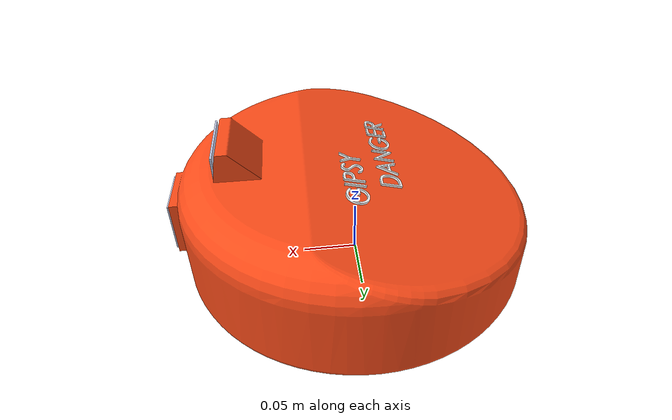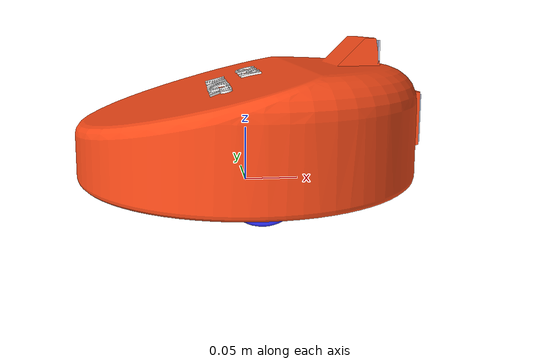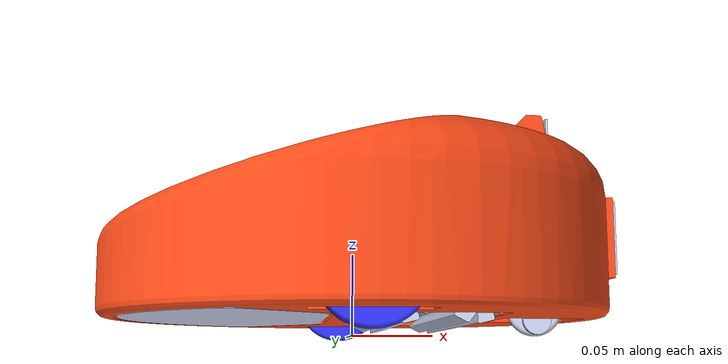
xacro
<?xml version='1.0'?>

<robot name="vaccumbot" xmlns:xacro="http://www.ros.org/wiki/xacro">

  <xacro:include filename="$(find vaccumbot)/urdf/vaccumbot_core.xacro" />
  <xacro:include filename="$(find vaccumbot)/urdf/vaccumbot_gazebo_control.xacro" />
  <xacro:include filename="$(find vaccumbot)/urdf/vaccumbot_camera.xacro" />
  <xacro:include filename="$(find vaccumbot)/urdf/vaccumbot_depth_camera.xacro" />

</robot>

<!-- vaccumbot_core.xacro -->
<robot name="vaccumbot" xmlns:xacro="http://www.ros.org/wiki/xacro" >

  <!-- BASE LINK -->

  <link name="base_link"/>
  <joint name="chassis_joint" type="fixed">
    <parent link="base_link"/>
    <child link="chassis_link"/>
    <origin rpy="0 0 0" xyz="0.0 0.0 0.0"/>
  </joint>

  <!-- CHASSIS LINK -->

  <link
    name="chassis_link">
    <inertial>
      <origin
        xyz="0.0126802640837411 6.40949875362062E-08 0.058194051584857"
        rpy="0 0 0" />
      <mass
        value="5.4959" />
      <inertia
        ixx="0.0371356810930404"
        ixy="9.9949761040764E-08"
        ixz="-0.00286739459112981"
        iyy="0.0355593300545489"
        iyz="-5.03783025884039E-09"
        izz="0.065646705814224" />
    </inertial>
    <visual>
      <origin
        xyz="0 0 0"
        rpy="0 0 0" />
      <geometry>
        <mesh
          filename="package://vaccumbot/meshes/base_link.STL" />
      </geometry>
      <material
        name="orange">
        <color
          rgba="1 0.3 0.1 1" />
      </material>
    </visual>
    <collision>
      <origin
        xyz="0 0 0"
        rpy="0 0 0" />
      <geometry>
        <mesh
          filename="package://vaccumbot/meshes/base_link.STL" />
      </geometry>
    </collision>
  </link>

  <!-- RIGHT WHEEL LINK -->

  <link
    name="rw_link">
    <inertial>
      <origin
        xyz="3.46944695195361E-18 3.46944695195361E-18 -2.77555756156289E-17"
        rpy="0 0 0" />
      <mass
        value="0.0491025370241815" />
      <inertia
        ixx="1.26103906089121E-05"
        ixy="1.04983184786151E-40"
        ixz="2.38228016415271E-22"
        iyy="1.26103906089121E-05"
        iyz="-2.29393049350819E-38"
        izz="2.2604204311792E-05" />
    </inertial>
    <visual>
      <origin
        xyz="0 0 0"
        rpy="0 0 0" />
      <geometry>
        <mesh
          filename="package://vaccumbot/meshes/rw_link.STL" />
      </geometry>
      <material
        name="blue">
        <color
          rgba="0.2 0.2 1 1" />
      </material>
    </visual>
    <collision>
      <origin
        xyz="0 0 0"
        rpy="0 0 0" />
      <geometry>
        <mesh
          filename="package://vaccumbot/meshes/rw_link.STL" />
      </geometry>
    </collision>
  </link>
  <joint
    name="rw"
    type="continuous">
    <origin
      xyz="0 -0.125 0.03"
      rpy="-1.5708 0 0" />
    <parent
      link="base_link" />
    <child
      link="rw_link" />
    <axis
      xyz="0 0 1" />
  </joint>

  <!-- LEFT WHEEL LINK -->

  <link
    name="lw_link">
    <inertial>
      <origin
        xyz="-3.46944695195361E-18 0 0"
        rpy="0 0 0" />
      <mass
        value="0.0491025370241815" />
      <inertia
        ixx="1.26103906089121E-05"
        ixy="-6.69042449460786E-38"
        ixz="-1.19114008207636E-22"
        iyy="1.26103906089121E-05"
        iyz="-4.01780295691213E-38"
        izz="2.26042043117919E-05" />
    </inertial>
    <visual>
      <origin
        xyz="0 0 0"
        rpy="0 0 0" />
      <geometry>
        <mesh
          filename="package://vaccumbot/meshes/lw_link.STL" />
      </geometry>
      <material
        name="blue">
        <color
          rgba="0.2 0.2 1 1" />
      </material>
    </visual>
    <collision>
      <origin
        xyz="0 0 0"
        rpy="0 0 0" />
      <geometry>
        <mesh
          filename="package://vaccumbot/meshes/lw_link.STL" />
      </geometry>
    </collision>
  </link>
  <joint
    name="lw"
    type="continuous">
    <origin
      xyz="0 0.125 0.03"
      rpy="1.5708 0 3.1416" />
    <parent
      link="base_link" />
    <child
      link="lw_link" />
    <axis
      xyz="0 0 1" />
  </joint>

  <!-- CASTOR WHEEL ASSEMBLY LINK -->

  <link
    name="strasm_link">
    <inertial>
      <origin
        xyz="0 -6.0629E-06 -0.019457"
        rpy="0 0 0" />
      <mass
        value="0.0046361" />
      <inertia
        ixx="7.54894203218429E-07"
        ixy="-2.44258930305482E-23"
        ixz="-2.20603142303679E-23"
        iyy="7.18558824886549E-07"
        iyz="4.14054745693393E-10"
        izz="2.51203869548262E-07" />
    </inertial>
    <visual>
      <origin
        xyz="0 0 0"
        rpy="0 0 0" />
      <geometry>
        <mesh
          filename="package://vaccumbot/meshes/strasm_link.STL" />
      </geometry>
      <material
        name="">
        <color
          rgba="0.79216 0.81961 0.93333 1" />
      </material>
    </visual>
    <collision>
      <origin
        xyz="0 0 0"
        rpy="0 0 0" />
      <geometry>
        <mesh
          filename="package://vaccumbot/meshes/strasm_link.STL" />
      </geometry>
    </collision>
  </link>
  <joint
    name="strasm"
    type="fixed">
    <origin
      xyz="0.115 0 0.0425"
      rpy="0 0 0" />
    <parent
      link="base_link" />
    <child
      link="strasm_link" />
    <axis
      xyz="0 0 -1" />
  </joint>

  <!-- CASTOR WHEEL LINK -->

  <link
    name="sw_link">
    <inertial>
      <origin
        xyz="2.7756E-17 -1.7347E-18 0.00048162"
        rpy="0 0 0" />
      <mass
        value="0.0070929" />
      <inertia
        ixx="5.65921693036348E-07"
        ixy="1.69347815846754E-39"
        ixz="2.05269774647707E-25"
        iyy="5.65921693036347E-07"
        iyz="1.79366203433577E-39"
        izz="1.06158941239449E-06" />
    </inertial>
    <visual>
      <origin
        xyz="0 0 0"
        rpy="0 0 0" />
      <geometry>
        <mesh
          filename="package://vaccumbot/meshes/sw_link.STL" />
      </geometry>
      <material
        name="">
        <color
          rgba="0.79216 0.81961 0.93333 1" />
      </material>
    </visual>
    <collision>
      <origin
        xyz="0 0 0"
        rpy="0 0 0" />
      <geometry>
        <mesh
          filename="package://vaccumbot/meshes/sw_link.STL" />
      </geometry>
      <surface>
        <friction>
            <ode>
                <mu>0.0001</mu>
                <mu2>0.0001</mu2>
            </ode>
        </friction>
      </surface>
    </collision>
  </link>
  <joint
    name="sw"
    type="continuous">
    <origin
      xyz="0 0 -0.025"
      rpy="-1.5708 0 0" />
    <parent
      link="strasm_link" />
    <child
      link="sw_link" />
    <axis
      xyz="0 0 -1" />
  </joint>

  <!-- FRONT VACCUM WHEEL LINK -->

  <link
    name="fvc_link">
    <inertial>
      <origin
        xyz="-5.3363E-09 1.3197E-09 3.4207E-09"
        rpy="0 0 0" />
      <mass
        value="0.13746" />
      <inertia
        ixx="0.00035908"
        ixy="6.9136E-12"
        ixz="-8.7755E-12"
        iyy="0.00036184"
        iyz="1.1468E-12"
        izz="1.9297E-05" />
    </inertial>
    <visual>
      <origin
        xyz="0 0 0"
        rpy="0 0 0" />
      <geometry>
        <mesh
          filename="package://vaccumbot/meshes/fvc_link.STL" />
      </geometry>
      <material
        name="">
        <color
          rgba="0.79216 0.81961 0.93333 1" />
      </material>
    </visual>
    <collision>
      <origin
        xyz="0 0 0"
        rpy="0 0 0" />
      <geometry>
        <mesh
          filename="package://vaccumbot/meshes/fvc_link.STL" />
      </geometry>
    </collision>
  </link>
  <joint
    name="fvc"
    type="continuous">
    <origin
      xyz="0.0195 0 0.0205"
      rpy="1.5708 0 3.1416" />
    <parent
      link="base_link" />
    <child
      link="fvc_link" />
    <axis
      xyz="0 0 -1" />
  </joint>

  <!-- REAR VACCUM WHEEL LINK -->

  <link
    name="rvc_link">
    <inertial>
      <origin
        xyz="-5.3363E-09 1.3197E-09 3.4207E-09"
        rpy="0 0 0" />
      <mass
        value="0.13746" />
      <inertia
        ixx="0.00035908"
        ixy="6.9136E-12"
        ixz="-8.7755E-12"
        iyy="0.00036184"
        iyz="1.1468E-12"
        izz="1.9297E-05" />
    </inertial>
    <visual>
      <origin
        xyz="0 0 0"
        rpy="0 0 0" />
      <geometry>
        <mesh
          filename="package://vaccumbot/meshes/rvc_link.STL" />
      </geometry>
      <material
        name="">
        <color
          rgba="0.79216 0.81961 0.93333 1" />
      </material>
    </visual>
    <collision>
      <origin
        xyz="0 0 0"
        rpy="0 0 0" />
      <geometry>
        <mesh
          filename="package://vaccumbot/meshes/rvc_link.STL" />
      </geometry>
    </collision>
  </link>
  <joint
    name="rvc"
    type="continuous">
    <origin
      xyz="0.0605 0 0.0205"
      rpy="1.5708 0 3.1416" />
    <parent
      link="base_link" />
    <child
      link="rvc_link" />
    <axis
      xyz="0 0 -1" />
  </joint>

  <!-- FLOOR MOPPING LINK -->

  <link
    name="flwp_link">
    <inertial>
      <origin
        xyz="0.0011186 1.8041E-16 0.016349"
        rpy="0 0 0" />
      <mass
        value="0.070162" />
      <inertia
        ixx="0.000229902876916624"
        ixy="2.06001046897999E-19"
        ixz="-1.18603162435497E-08"
        iyy="7.04015716052353E-05"
        iyz="-2.79956816464161E-21"
        izz="0.000299969147301236" />
    </inertial>
    <visual>
      <origin
        xyz="0 0 0"
        rpy="0 0 0" />
      <geometry>
        <mesh
          filename="package://vaccumbot/meshes/flwp_link.STL" />
      </geometry>
      <material
        name="">
        <color
          rgba="0.79216 0.81961 0.93333 1" />
      </material>
    </visual>
    <collision>
      <origin
        xyz="0 0 0"
        rpy="0 0 0" />
      <geometry>
        <mesh
          filename="package://vaccumbot/meshes/flwp_link.STL" />
      </geometry>
    </collision>
  </link>
  <joint
    name="flwp"
    type="prismatic">
    <origin
      xyz="-0.075 0 0.028"
      rpy="3.1416 0 3.1416" />
    <parent
      link="base_link" />
    <child
      link="flwp_link" />
    <axis
      xyz="0 0 -1" />
    <limit
      lower="0"
      upper="0.009"
      effort="0"
      velocity="0" />
  </joint>

  <!-- TOP CAMERA LINK -->

  <link
    name="tcam_link">
    <inertial>
      <origin
        xyz="-0.000749999999999973 -5.89805981832114E-17 0"
        rpy="0 0 0" />
      <mass
        value="0.00198" />
      <inertia
        ixx="6.7386E-07"
        ixy="-5.77301437445242E-23"
        ixz="-1.98523347012727E-23"
        iyy="8.023125E-08"
        iyz="-4.40511694302034E-22"
        izz="5.9437125E-07" />
    </inertial>
    <visual>
      <origin
        xyz="0 0 0"
        rpy="0 0 0" />
      <geometry>
        <mesh
          filename="package://vaccumbot/meshes/tcam_link.STL" />
      </geometry>
      <material
        name="">
        <color
          rgba="0.792156862745098 0.819607843137255 0.933333333333333 1" />
      </material>
    </visual>
    <collision>
      <origin
        xyz="0 0 0"
        rpy="0 0 0" />
      <geometry>
        <mesh
          filename="package://vaccumbot/meshes/tcam_link.STL" />
      </geometry>
    </collision>
  </link>
  <joint
    name="tcam"
    type="fixed">
    <origin
      xyz="0.11856 0 0.12179"
      rpy="0 0 0" />
    <!-- use this value for pitch -0.17453 -->
    <parent
      link="base_link" />
    <child
      link="tcam_link" />
    <axis
      xyz="0 0 0" />
  </joint>

  <!-- FRONT CAMERA LINK (MAY NOT BE NEEDED)-->

  <link
    name="fcam_link">
    <inertial>
      <origin
        xyz="-0.001 -3.46944695195361E-18 0"
        rpy="0 0 0" />
      <mass
        value="0.00405" />
      <inertia
        ixx="1.366875E-06"
        ixy="-7.81562594387462E-25"
        ixz="-3.26310443204654E-24"
        iyy="6.847875E-07"
        iyz="2.3246849523907E-39"
        izz="6.847875E-07" />
    </inertial>
    <visual>
      <origin
        xyz="0 0 0"
        rpy="0 0 0" />
      <geometry>
        <mesh
          filename="package://vaccumbot/meshes/fcam_link.STL" />
      </geometry>
      <material
        name="">
        <color
          rgba="0.792156862745098 0.819607843137255 0.933333333333333 1" />
      </material>
    </visual>
    <collision>
      <origin
        xyz="0 0 0"
        rpy="0 0 0" />
      <geometry>
        <mesh
          filename="package://vaccumbot/meshes/fcam_link.STL" />
      </geometry>
    </collision>
  </link>
  <joint
    name="fcam"
    type="fixed">
    <origin
      xyz="0.162 0 0.06"
      rpy="0 0 0" />
    <parent
      link="base_link" />
    <child
      link="fcam_link" />
    <axis
      xyz="0 0 0" />
  </joint>

  <!-- NAME PLATE LINK -->

  <link
    name="name_link">
    <inertial>
      <origin
        xyz="0 0 0"
        rpy="0 0 0" />
      <mass
        value="0" />
      <inertia
        ixx="0"
        ixy="0"
        ixz="0"
        iyy="0"
        iyz="0"
        izz="0" />
    </inertial>
    <visual>
      <origin
        xyz="0 0 0"
        rpy="0 0 0" />
      <geometry>
        <mesh
          filename="package://vaccumbot/meshes/name_link.STL" />
      </geometry>
      <material
        name="">
        <color
          rgba="1 1 1 1" />
      </material>
    </visual>
    <collision>
      <origin
        xyz="0 0 0"
        rpy="0 0 0" />
      <geometry>
        <mesh
          filename="package://vaccumbot/meshes/name_link.STL" />
      </geometry>
    </collision>
  </link>
  <joint
    name="name"
    type="fixed">
    <origin
      xyz="-0.004944 -0.0048418 0.098545"
      rpy="3.1416 -1.3258 -3.1416" />
    <parent
      link="base_link" />
    <child
      link="name_link" />
    <axis
      xyz="0 0 0" />
  </joint>

</robot>

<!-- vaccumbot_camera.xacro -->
<robot name="vaccumbot" xmlns:xacro="http://www.ros.org/wiki/xacro">

  <!-- CAMERA MATERIAL -->

  <gazebo reference="fcam_link">
      <material>Gazebo/Red</material>
  </gazebo>

  <!-- CAMERA OPTICAL LINK-->

  <joint name="cam_opt" type="fixed">
    <parent link="fcam_link"/>
    <child link="cam_link_opt"/>
    <origin xyz="0 0 0" rpy="-1.57 0 -1.57"/>
  </joint>

  <link name="cam_link_opt"></link>

  <!-- CAMERA DEFINITION -->

  <gazebo reference="fcam_link">
    <sensor type="camera" name="camera">
    <pose> 0 0 0 0 0 0 </pose>
    <visualize>false</visualize>
    <update_rate>10.0</update_rate>
    <camera>
        <horizontal_fov>1.089</horizontal_fov>
        <image>
        <width>800</width>
        <height>800</height>
        <format>R8G8B8</format>
        </image>
        <clip>
        <near>0.05</near>
        <far>8.0</far>
        </clip>
    </camera>
    <plugin name="camera_controller" filename="libgazebo_ros_camera.so">
        <alwaysOn>true</alwaysOn>
        <updateRate>0.0</updateRate>
        <cameraName>camera</cameraName>
        <imageTopicName>/camera/image_raw</imageTopicName>
        <cameraInfoTopicName>/camera/camera_info</cameraInfoTopicName>
        <frameName>cam_link_opt</frameName>
        <hackBaseline>0.07</hackBaseline>
        <distortionK1>0.0</distortionK1>
        <distortionK2>0.0</distortionK2>
        <distortionK3>0.0</distortionK3>
        <distortionT1>0.0</distortionT1>
        <distortionT2>0.0</distortionT2>
    </plugin>
    </sensor>
  </gazebo>

</robot>

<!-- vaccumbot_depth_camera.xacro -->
<robot name="vaccumbot" xmlns:xacro="http://www.ros.org/wiki/xacro">

  <!-- DEPTH CAMERA MATERIAL -->

  <gazebo reference="tcam_link">
      <material>Gazebo/Yellow</material>
  </gazebo>

  <!-- DEPTH CAMERA OPTICAL LINK-->

  <joint name="depcam_opt" type="fixed">
    <parent link="tcam_link"/>
    <child link="depcam_link_opt"/>
    <origin xyz="0 0 0" rpy="-1.57 0 -1.57"/>
  </joint>

  <link name="depcam_link_opt"></link>

  <!-- DEPTH CAMERA DEFINITION -->

  <gazebo reference="tcam_link">
    <sensor name="camera1" type="depth">
      <pose> 0 0 0 0 0 0 </pose>
      <visualize>true</visualize>
      <update_rate>20</update_rate>
      <camera>
          <horizontal_fov>1.089</horizontal_fov>
          <image>
              <format>B8G8R8</format>
              <width>800</width>
              <height>800</height>
          </image>
          <clip>
              <near>0.05</near>
              <far>8.0</far>
          </clip>
      </camera>
      <plugin name="depth_camera_controller" filename="libgazebo_ros_openni_kinect.so">
          <frameId>depcam_link_opt</frameId>
          <alwaysOn>true</alwaysOn>
          <frameName>depcam_link_opt</frameName>
          <cameraName>camera1</cameraName>
          <imageTopicName>/camera1/color/image_raw</imageTopicName>
          <cameraInfoTopicName>/camera1/color/camera_info</cameraInfoTopicName>
          <depthImageTopicName>/camera1/depth/image_raw</depthImageTopicName>
          <depthImageCameraInfoTopicName>/camera1/depth/camera_info</depthImageCameraInfoTopicName>
          <pointCloudTopicName>/camera1/depth/points</pointCloudTopicName>
          <min_depth>0.1</min_depth>
          <max_depth>200.0</max_depth>
      </plugin>
    </sensor>
  </gazebo>

</robot>
